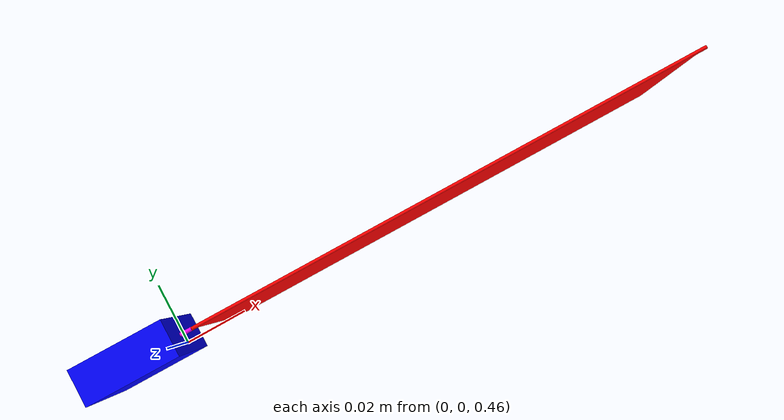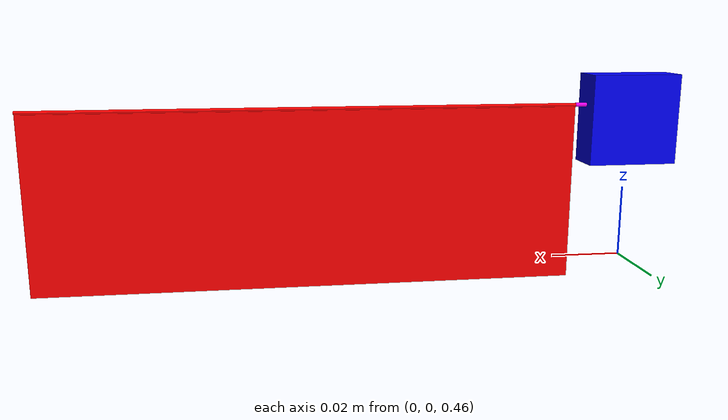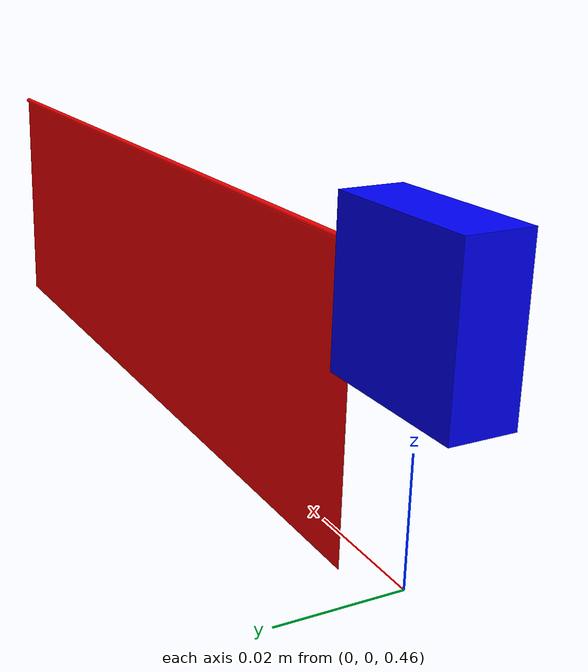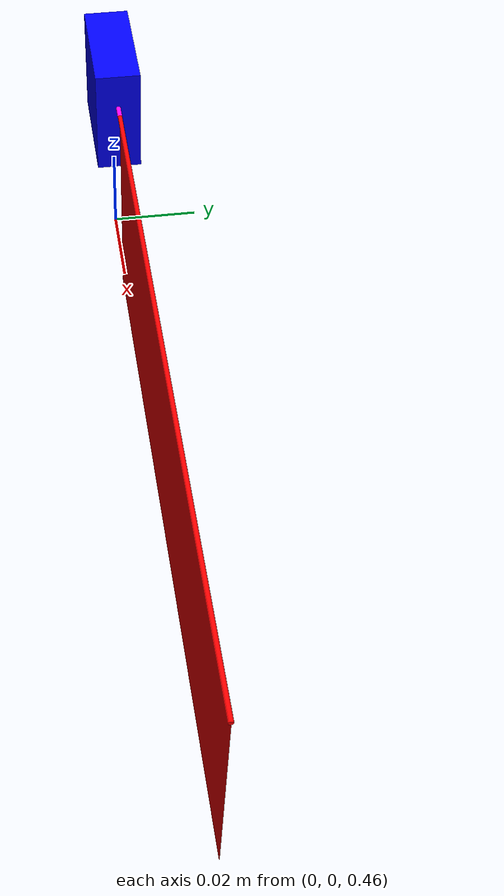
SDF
<?xml version="1.0" ?>
<sdf version="1.8">
    <world name="world2">
        <physics name="1ms" type="ignored">
            <max_step_size>0.0001</max_step_size>
            <real_time_factor> 1</real_time_factor>
        </physics>
        <plugin filename="libignition-gazebo-physics-system.so" name="ignition::gazebo::systems::Physics">
        </plugin>
        <plugin filename="libignition-gazebo-user-commands-system.so" name="ignition::gazebo::systems::UserCommands">
        </plugin>
        <plugin filename="libignition-gazebo-scene-broadcaster-system.so" name="ignition::gazebo::systems::SceneBroadcaster">
        </plugin>
        <light type="directional" name="sun">
            <cast_shadows>true</cast_shadows>
            <pose>0 0 10 0 0 0</pose>
            <diffuse>0.8 0.8 0.8 1</diffuse>
            <specular>0.2 0.2 0.2 1</specular>
            <attenuation>
                <range>1000</range>
                <constant>0.9</constant>
                <linear>0.01</linear>
                <quadratic>0.001</quadratic>
            </attenuation>
            <direction>-0.5 0.1 -0.9</direction>
        </light>
        <model name="ground_plane">
            <pose relative_to="world">0 0 0 0 0 0</pose>
            <static>true</static>
            <link name="link">
                <collision name="link">
                    <geometry>
                        <plane>
                            <normal>0 0 1</normal>
                        </plane>
                    </geometry>
                </collision>
                <visual name="link">
                    <geometry>
                        <plane>
                            <normal>0 0 1</normal>
                            <size>100 100</size>
                        </plane>
                    </geometry>
                    <material>
                        <ambient>0.8 0.8 0.8 1</ambient>
                        <diffuse>0.8 0.8 0.8 1</diffuse>
                        <specular>0.8 0.8 0.8 1</specular>
                    </material>
                </visual>
            </link>
        </model>
        <model name="URDF_LargeWings">
            <pose relative_to="world">0 0 .5 1.5708 0 0</pose>
            <link name="body">
                <pose>0 0 0 0 0 0</pose>
                <inertial>
                    <pose>2.96269786051038E-18 -0.0225 1.73852292297301E-18 1.5708 0 0</pose>
                    <mass>1.0</mass>
                    <inertia>
                        <ixx>0.1</ixx>
                        <ixy>0</ixy>
                        <ixz>0</ixz>
                        <iyy>0.1</iyy>
                        <iyz>0</iyz>
                        <izz>0.2</izz>
                    </inertia>
                </inertial>
                <visual name="body">
                    <pose>0 0 0 0 0 0</pose>
                    <geometry>
                        <box>
                            <size>0.025 0.025 0.01</size>
                        </box>
                    </geometry>
                    <material>
                        <ambient>0.0 0.0 1.0 1</ambient>
                        <diffuse>0.0 0.0 1.0 1</diffuse>
                        <specular>0.0 0.0 1.0 1</specular>
                    </material>
                </visual>
            </link>
            <link name="hinge">
                <pose relative_to="stroke_joint">0 0 0 0 0 0</pose>
                <inertial>
                    <pose>0.00335273645464822 0.00332401287529993 -9.5470568989951E-21 0 0 0</pose>
                    <mass>0.5</mass>
                    <inertia>
                        <ixx>0.05</ixx>
                        <ixy>0</ixy>
                        <ixz>0</ixz>
                        <iyy>0.05</iyy>
                        <iyz>0</iyz>
                        <izz>0.1</izz>
                    </inertia>
                </inertial>
                <visual name="hinge">
                    <pose relative_to="stroke_joint">0 0 0 0 0 0</pose>
                    <geometry>
                        <mesh>
                            <uri>model://URDF_LargeWings/meshes/RW_Flap.STL</uri>
                        </mesh>
                    </geometry>
                    <material>
                        <ambient>1.0 0.0 1.0 .9</ambient>
                        <diffuse>1.0 0.0 1.0 .9</diffuse>
                        <specular>1.0 0.0 1.0 .9</specular>
                    </material>
                </visual>
                <collision name="hinge">
                    <pose relative_to="stroke_joint">0 0 0 0 0 0</pose>
                    <geometry>
                        <mesh>
                            <uri>model://URDF_LargeWings/meshes/RW_Flap.STL</uri>
                        </mesh>
                    </geometry>
                </collision>
            </link>
            <link name="wing">
                <pose relative_to="pitch_joint">0 0 0 0 0 0</pose>
                <inertial>
                    <pose>0.075 -0.0217919871250799 3.00461767003954E-20 0 0 0</pose>
                    <mass>0.2</mass>
                    <inertia>
                        <ixx>0.02</ixx>
                        <ixy>0</ixy>
                        <ixz>0</ixz>
                        <iyy>0.02</iyy>
                        <iyz>0</iyz>
                        <izz>0.04</izz>
                    </inertia>
                </inertial>
                <visual name="wing">
                    <pose relative_to="pitch_joint">0 0 0 0 0 0</pose>
                    <geometry>
                        <mesh>
                            <uri>model://URDF_LargeWings/meshes/RW_Pitch.STL</uri>
                        </mesh>
                    </geometry>
                    <material>
                        <ambient>1.0 0.0 0.0 .9</ambient>
                        <diffuse>1.0 0.0 0.0 .9</diffuse>
                        <specular>1.0 0.0 0.0 .9</specular>
                    </material>
                </visual>
                <collision name="wing">
                    <pose relative_to="pitch_joint">0 0 0 0 0 0</pose>
                    <geometry>
                        <mesh>
                            <uri>model://URDF_LargeWings/meshes/RW_Pitch.STL</uri>
                        </mesh>
                    </geometry>
                </collision>
            </link>
            <joint name="anchor2" type="revolute">
                <pose relative_to="body">0 0 0 0 0 0</pose>
                <parent>world</parent>
                <child>body</child>
                <axis>
                    <xyz>0 1 0</xyz>
                    <limit>
                        <effort>0</effort>
                        <lower>0</lower>
                        <upper>0</upper>
                    </limit>
                </axis>
            </joint>
            <joint name="pitch_joint" type="revolute">
                <pose relative_to="hinge">0.00899999999999999 0.004 0 0 0 0</pose>
                <parent>hinge</parent>
                <child>wing</child>
                <axis>
                    <xyz>-1 0 0</xyz>
                    <dynamics>
                        <damping>1e-16</damping>
                        <spring_stiffness>10.18</spring_stiffness>
                    </dynamics>
                    <limit>
                        <effort>0</effort>
                        <lower>-1.79769e+8</lower>
                        <upper>1.79769e+8</upper>
                    </limit>
                </axis>
            </joint>
            <joint name="stroke_joint" type="revolute">
                <pose relative_to="body">0.00666143782776616 0 0 0 0 0</pose>
                <parent>body</parent>
                <child>hinge</child>
                <axis>
                    <xyz>0 -1 0</xyz>
                    <dynamics>
                        <damping>1e-16</damping>
                        <spring_stiffness>5</spring_stiffness>
                    </dynamics>
                    <limit>
                        <lower>-1.79769e+5</lower>
                        <upper>1.79769e+5</upper>
                    </limit>
                </axis>
            </joint>
            <plugin filename="aero_state_plugins" name="aerodynamics">
                <data_file_path>/home/darin/Github/ros2-gazebo-drake-sims/flapping_proj/optimization/data/aero.csv</data_file_path>
                <only_data>false</only_data>
                <link>
                    <link_name>wing</link_name>
                    <link_type>wing</link_type>
                    <stall_angle>15</stall_angle>
                    <fluid_density>1.293</fluid_density>
                    <drag_coefficient>1.28</drag_coefficient>
                    <lift_coefficient>1</lift_coefficient>
                    <control_joint>stroke_joint</control_joint>
                    <wing_pitch_joint>pitch_joint</wing_pitch_joint>
                    <blades>9</blades>
                    <center_pressure_list>-0.060, -0.025, 0, -0.045, -0.025, 0, -0.030, -0.025, 0, -0.015, -0.025, 0, 0.000, -0.025, 0, 0.015, -0.025, 0, 0.030, -0.025, 0, 0.045, -0.025, 0, 0.060, -0.025, 0 </center_pressure_list>
                    <upward_vector_list>0,0,1, 0,0,1,0,0,1,0,0,1,0,0,1,0,0,1,0,0,1,0,0,1,0,0,1, </upward_vector_list>
                    <chord_direction_list>0,0,1, 0,0,1,0,0,1,0,0,1,0,0,1,0,0,1,0,0,1,0,0,1,0,0,1, </chord_direction_list>
                    <blade_area_list>0.00085,0.00085,0.00085,0.00085,0.00085,0.00085,0.00085,0.00085,0.00085,</blade_area_list>
                </link>
            </plugin>
            <plugin filename="aero_state_plugins" name="odometry_state">
                <world_name>world2</world_name>
                <odometry_topic>/odom</odometry_topic>
                <odom_publish_frequency>1000.0</odom_publish_frequency>
                <joint>pitch_joint</joint>
                <joint>stroke_joint</joint>
            </plugin>
            <plugin filename="libignition-gazebo-apply-joint-force-system.so" name="ignition::gazebo::systems::ApplyJointForce">
                <joint_name>stroke_joint</joint_name>
            </plugin>
        </model>
    </world>
</sdf>
